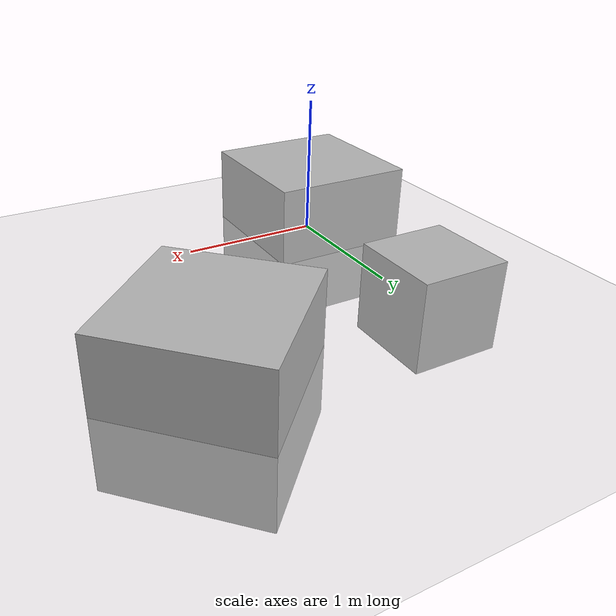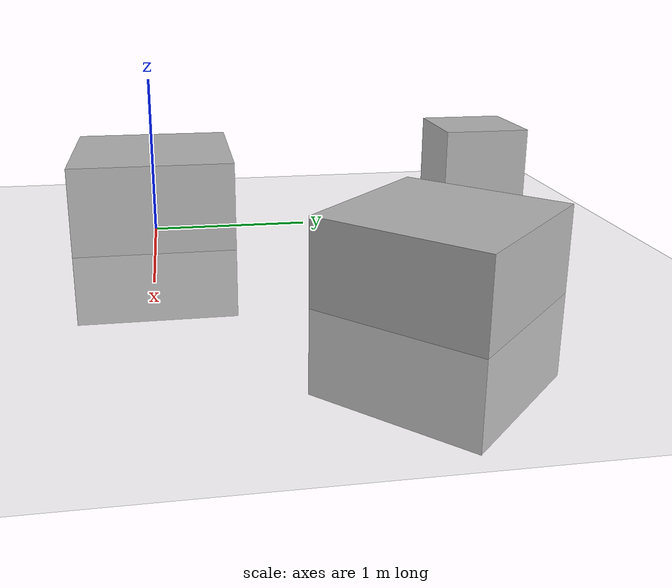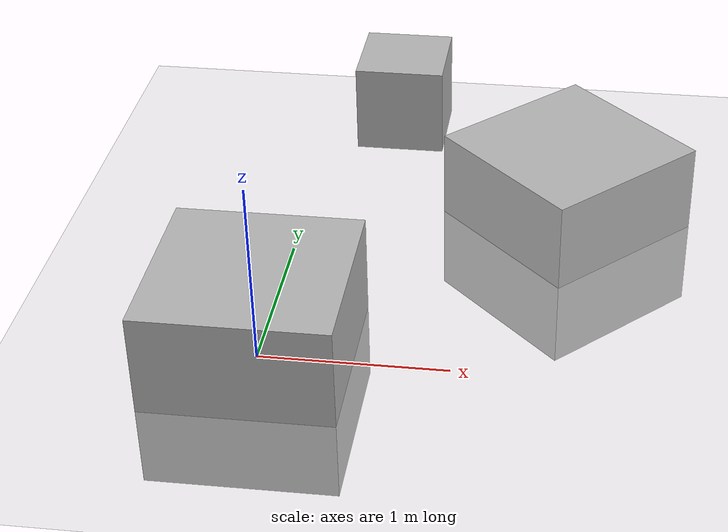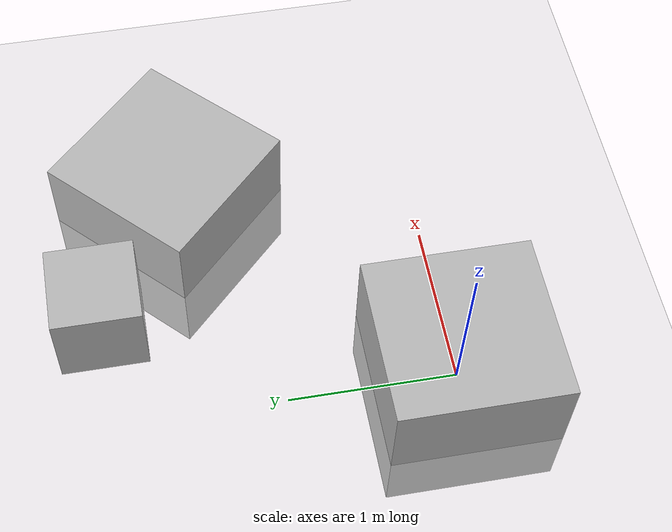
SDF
<?xml version="1.0"?>
<sdf version="1.4">
  <world name="default">
    <include>
      <uri>model://ground_plane</uri>
    </include>

    <include>
      <uri>model://sun</uri>
    </include>

<include>
      <uri>model://joint_position_sdf</uri>
    </include>
<include>
      <uri>model://minibox</uri>
</include>

  </world>
</sdf>

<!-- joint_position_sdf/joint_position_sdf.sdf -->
<sdf version="1.4">
    <model name="joint_position_sdf">

        <link name="palm">
            <pose>0.0 0.0 0.05 0 0 0</pose>
            <inertial>
                <inertia>
                    <ixx>0.01</ixx>
                    <ixy>0</ixy>
                    <ixz>0</ixz>
                    <iyy>0.01</iyy>
                    <iyz>0</iyz>
                    <izz>0.01</izz>
                </inertia>
                <mass>0.5</mass>
            </inertial>
            <collision name="collision">
                <geometry>
                    <box>
                        <size>1 1 1</size>
                    </box>
                </geometry>
            </collision>
            <visual name="visual">
                <geometry>
                    <box>
                        <size>1 1 1</size>
                    </box>
                </geometry>
                <material>
                    <script>Gazebo/Red</script>
                </material>
            </visual>

        </link>
        <link name="left_finger">
            <pose>1.5 1.5 0 0 0 -0.78539</pose>
            <inertial>
                <inertia>
                    <ixx>0.01</ixx>
                    <ixy>0</ixy>
                    <ixz>0</ixz>
                    <iyy>0.01</iyy>
                    <iyz>0</iyz>
                    <izz>0.01</izz>
                </inertia>
                <mass>0.1</mass>
            </inertial>
            <collision name="collision">
                <geometry>
                    <box>
                        <size>1 1 1</size>
                    </box>
                </geometry>
            </collision>
            <visual name="visual">
                <geometry>
                    <box>
                        <size>1 1 1</size>
                    </box>
                </geometry>
                <material>
                    <script>Gazebo/Blue</script>
                </material>
            </visual>
        </link>

<joint name="r1" type="revolute">
            <pose>0 -0.15 0 0 0 0</pose>
            <child>left_finger</child>
            <parent>palm</parent>
            <axis>
                <limit>
                    <lower>-2</lower>
                    <upper>2</upper>
                </limit>
                <xyz>0 0 1</xyz>
            </axis>
        </joint>

<plugin name="joint_position" filename="libjoint_position.so"/>
    </model>
</sdf>

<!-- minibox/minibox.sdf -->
<sdf version="1.4">
<model name="minibox">
      <pose>0.5 2 0.5 0 0 0</pose>
      <link name="link">
        <collision name="collision">
          <geometry>
            <box>
              <size>0.5 0.5 0.5</size>
            </box>
          </geometry>
        </collision>
	<inertial>
        <mass>0.01</mass>

      </inertial>

        <visual name="visual">
          <geometry>
            <box>
              <size>0.5 0.5 0.5</size>
            </box>
          </geometry>
        </visual>
      </link>
    </model>
</sdf>
